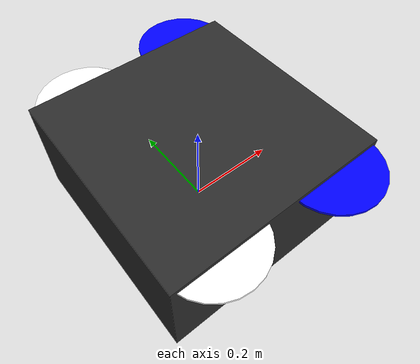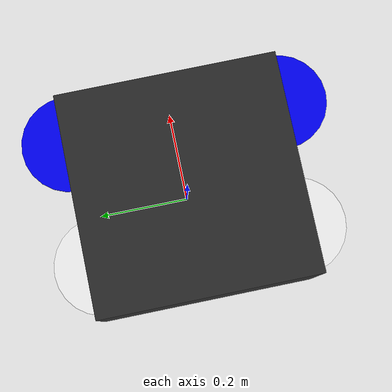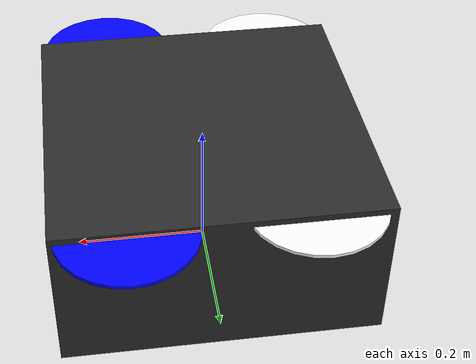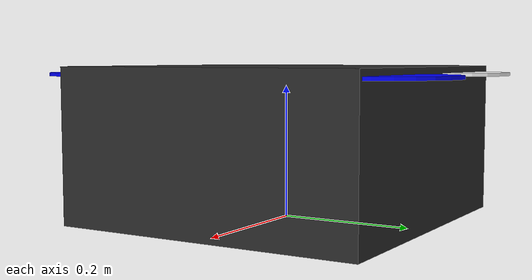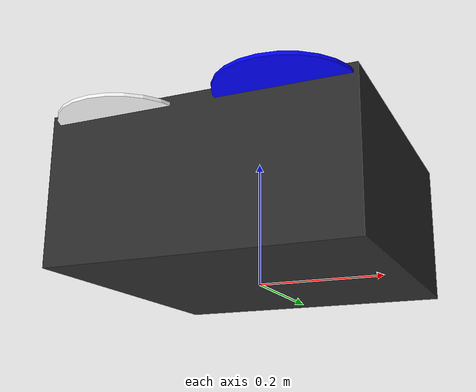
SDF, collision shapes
<?xml version='1.0'?>
<sdf version='1.6'>
  <model name='iris_with_camera'>
    <include>
      <uri>model://iris_with_standoffs</uri>
    </include>

    <include>
      <uri>model://downward_camera</uri>
    </include>

    <plugin
      filename="ignition-gazebo-sensors-system"
      name="ignition::gazebo::systems::Sensors">
    </plugin>

    <joint name="downward_camera_joint" type="fixed">
      <child>downward_camera::link</child>
      <parent>iris_with_standoffs::base_link</parent>
      <axis>
        <xyz>0 0 1</xyz>
        <limit>
          <upper>0</upper>
          <lower>0</lower>
        </limit>
      </axis>
    </joint>
  </model>
</sdf>

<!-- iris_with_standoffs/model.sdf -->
<sdf version='1.5'>
  <model name='iris_with_standoffs'>
    <pose>0 0 0.194923 0 0 0</pose>
    <link name='base_link'>
      <velocity_decay>
        <linear>0.0</linear>
        <angular>0.0</angular>
      </velocity_decay>
      <inertial>
        <pose>0 0 0 0 0 0</pose>
        <mass>1.5</mass>
        <inertia>
          <ixx>0.008</ixx>
          <ixy>0</ixy>
          <ixz>0</ixz>
          <iyy>0.015</iyy>
          <iyz>0</iyz>
          <izz>0.017</izz>
        </inertia>
      </inertial>
      <collision name='base_link_collision'>
        <pose>0 0 -0.08 0 0 0</pose>
        <geometry>
          <box>
            <size>0.47 0.47 0.23</size>
          </box>
        </geometry>
        <surface>
          <contact>
            <ode>
              <max_vel>100.0</max_vel>
              <min_depth>0.001</min_depth>
            </ode>
          </contact>
          <friction>
            <ode>
              <mu>100000.0</mu>
              <mu2>100000.0</mu2>
            </ode>
          </friction>
        </surface>
      </collision>
      <visual name='base_link_visual'>
        <geometry>
          <mesh>
            <uri>model://iris_with_standoffs/meshes/iris.dae</uri>
          </mesh>
        </geometry>
        <material>
          <ambient>.175 .175 .175  1.0</ambient>
          <diffuse>.175 .175 .175  1.0</diffuse>
          <specular>.175 .175 .175 1.000000</specular>
        </material>
      </visual>

      <visual name='front_left_leg_visual'>
        <pose>0.123 0.22 -0.11 0 0 0</pose>
        <geometry>
          <cylinder>
            <radius>0.005</radius>
            <length>0.17</length>
          </cylinder>
        </geometry>
        <material>
          <ambient>0.1 0.1 0.1</ambient>
          <diffuse>0.1 0.1 0.1</diffuse>
          <specular>0.01 0.01 0.01 1.0</specular>
        </material>
      </visual>
      <visual name='front_right_leg_visual'>
        <pose>0.123 -0.22 -0.11 0 0 0</pose>
        <geometry>
          <cylinder>
            <radius>0.005</radius>
            <length>0.17</length>
          </cylinder>
        </geometry>
        <material>
          <ambient>0.1 0.1 0.1</ambient>
          <diffuse>0.1 0.1 0.1</diffuse>
          <specular>0.01 0.01 0.01 1.0</specular>
        </material>
      </visual>
      <visual name='rear_left_leg_visual'>
        <pose>-0.140 0.21 -0.11 0 0 0</pose>
        <geometry>
          <cylinder>
            <radius>0.005</radius>
            <length>0.17</length>
          </cylinder>
        </geometry>
        <material>
          <ambient>0.1 0.1 0.1</ambient>
          <diffuse>0.1 0.1 0.1</diffuse>
          <specular>0.01 0.01 0.01 1.0</specular>
        </material>
      </visual>
      <visual name='rear_right_leg_visual'>
        <pose>-0.140 -0.21 -0.11 0 0 0</pose>
        <geometry>
          <cylinder>
            <radius>0.005</radius>
            <length>0.17</length>
          </cylinder>
        </geometry>
        <material>
          <ambient>0.1 0.1 0.1</ambient>
          <diffuse>0.1 0.1 0.1</diffuse>
          <specular>0.01 0.01 0.01 1.0</specular>
        </material>
      </visual>
    </link>
    <link name='iris/ground_truth/odometry_sensorgt_link'>
      <pose>0 0 0 0 -0 0</pose>
      <inertial>
        <pose>0 0 0 0 -0 0</pose>
        <mass>0.15</mass>
        <inertia>
          <ixx>0.0001</ixx>
          <ixy>0</ixy>
          <ixz>0</ixz>
          <iyy>0.0002</iyy>
          <iyz>0</iyz>
          <izz>0.0002</izz>
        </inertia>
      </inertial>
    </link>
    <joint name='iris/ground_truth/odometry_sensorgt_joint' type='revolute'>
      <child>iris/ground_truth/odometry_sensorgt_link</child>
      <parent>base_link</parent>
      <axis>
        <xyz>0 0 1</xyz>
        <limit>
          <lower>0</lower>
          <upper>0</upper>
          <effort>0</effort>
          <velocity>0</velocity>
        </limit>
        <dynamics>
          <damping>1.0</damping>
        </dynamics>
        <use_parent_model_frame>1</use_parent_model_frame>
      </axis>
      <physics>
        <ode>
          <implicit_spring_damper>1</implicit_spring_damper>
        </ode>
      </physics>
    </joint>
    <link name='imu_link'>
      <inertial>
        <pose>0 0 0 0 0 0</pose>
        <mass>0.15</mass>
        <inertia>
          <ixx>0.00001</ixx>
          <ixy>0</ixy>
          <ixz>0</ixz>
          <iyy>0.00002</iyy>
          <iyz>0</iyz>
          <izz>0.00002</izz>
        </inertia>
      </inertial>
      <sensor name="imu_sensor" type="imu">
        <pose>0 0 0 3.141593 0 0</pose>
        <always_on>1</always_on>
        <update_rate>1000.0</update_rate>
      </sensor>
    </link>
    <joint name='iris/imu_joint' type='revolute'>
      <child>imu_link</child>
      <parent>base_link</parent>
      <axis>
        <xyz>0 0 1</xyz>
        <limit>
          <lower>0</lower>
          <upper>0</upper>
          <effort>0</effort>
          <velocity>0</velocity>
        </limit>
        <dynamics>
          <damping>1.0</damping>
        </dynamics>
        <use_parent_model_frame>1</use_parent_model_frame>
      </axis>
      <physics>
        <ode>
          <implicit_spring_damper>1</implicit_spring_damper>
        </ode>
      </physics>
    </joint>
    <link name='rotor_0'>
      <pose>0.13 -0.22 0.023 0 -0 0</pose>
      <inertial>
        <pose>0 0 0 0 -0 0</pose>
        <mass>0.025</mass>
        <inertia>
          <ixx>9.75e-06</ixx>
          <ixy>0</ixy>
          <ixz>0</ixz>
          <iyy>0.000166704</iyy>
          <iyz>0</iyz>
          <izz>0.000167604</izz>
        </inertia>
      </inertial>
      <collision name='rotor_0_collision'>
        <pose>0 0 0 0 -0 0</pose>
        <geometry>
          <cylinder>
            <length>0.005</length>
            <radius>0.1</radius>
          </cylinder>
        </geometry>
        <surface>
          <contact>
            <ode/>
          </contact>
          <friction>
            <ode/>
          </friction>
        </surface>
      </collision>
      <visual name='rotor_0_visual'>
        <pose>0 0 0 0 -0 0</pose>
        <geometry>
          <mesh>
            <scale>1 1 1</scale>
            <uri>model://iris_with_standoffs/meshes/iris_prop_ccw.dae</uri>
          </mesh>
        </geometry>
        <material>
          <ambient>0 0 1</ambient>
          <diffuse>0 0 1</diffuse>
          <specular>0.1 0.1 0.1 1</specular>
        </material>
      </visual>
      <gravity>1</gravity>
      <velocity_decay/>
      <self_collide>0</self_collide>
    </link>
    <joint name='rotor_0_joint' type='revolute'>
      <child>rotor_0</child>
      <parent>base_link</parent>
      <axis>
        <xyz>0 0 1</xyz>
        <limit>
          <lower>-1e+16</lower>
          <upper>1e+16</upper>
        </limit>
        <dynamics>
          <damping>0.004</damping>
        </dynamics>
        <use_parent_model_frame>1</use_parent_model_frame>
      </axis>
      <physics>
        <ode>
          <implicit_spring_damper>1</implicit_spring_damper>
        </ode>
      </physics>
    </joint>
    <link name='rotor_1'>
      <pose>-0.13 0.2 0.023 0 -0 0</pose>
      <inertial>
        <pose>0 0 0 0 -0 0</pose>
        <mass>0.025</mass>
        <inertia>
          <ixx>9.75e-06</ixx>
          <ixy>0</ixy>
          <ixz>0</ixz>
          <iyy>0.000166704</iyy>
          <iyz>0</iyz>
          <izz>0.000167604</izz>
        </inertia>
      </inertial>
      <collision name='rotor_1_collision'>
        <pose>0 0 0 0 -0 0</pose>
        <geometry>
          <cylinder>
            <length>0.005</length>
            <radius>0.1</radius>
          </cylinder>
        </geometry>
        <surface>
          <contact>
            <ode/>
          </contact>
          <friction>
            <ode/>
          </friction>
        </surface>
      </collision>
      <visual name='rotor_1_visual'>
        <pose>0 0 0 0 -0 0</pose>
        <geometry>
          <mesh>
            <scale>1 1 1</scale>
            <uri>model://iris_with_standoffs/meshes/iris_prop_ccw.dae</uri>
          </mesh>
        </geometry>
        <material>
          <ambient>1 1 1 1</ambient>
          <diffuse>1 1 1 1</diffuse>
          <specular>.1 .1 .1 1</specular>
        </material>
      </visual>
      <gravity>1</gravity>
      <velocity_decay/>
      <self_collide>0</self_collide>
    </link>
    <joint name='rotor_1_joint' type='revolute'>
      <child>rotor_1</child>
      <parent>base_link</parent>
      <axis>
        <xyz>0 0 1</xyz>
        <limit>
          <lower>-1e+16</lower>
          <upper>1e+16</upper>
        </limit>
        <dynamics>
          <damping>0.004</damping>
        </dynamics>
        <use_parent_model_frame>1</use_parent_model_frame>
      </axis>
      <physics>
        <ode>
          <implicit_spring_damper>1</implicit_spring_damper>
        </ode>
      </physics>
    </joint>
    <link name='rotor_2'>
      <pose>0.13 0.22 0.023 0 -0 0</pose>
      <inertial>
        <pose>0 0 0 0 -0 0</pose>
        <mass>0.025</mass>
        <inertia>
          <ixx>9.75e-06</ixx>
          <ixy>0</ixy>
          <ixz>0</ixz>
          <iyy>0.000166704</iyy>
          <iyz>0</iyz>
          <izz>0.000167604</izz>
        </inertia>
      </inertial>
      <collision name='rotor_2_collision'>
        <pose>0 0 0 0 -0 0</pose>
        <geometry>
          <cylinder>
            <length>0.005</length>
            <radius>0.1</radius>
          </cylinder>
        </geometry>
        <surface>
          <contact>
            <ode/>
          </contact>
          <friction>
            <ode/>
          </friction>
        </surface>
      </collision>
      <visual name='rotor_2_visual'>
        <pose>0 0 0 0 -0 0</pose>
        <geometry>
          <mesh>
            <scale>1 1 1</scale>
            <uri>model://iris_with_standoffs/meshes/iris_prop_cw.dae</uri>
          </mesh>
        </geometry>
        <material>
          <ambient>0 0 1</ambient>
          <diffuse>0 0 1</diffuse>
          <specular>0.1 0.1 0.1 1</specular>
        </material>
      </visual>
      <gravity>1</gravity>
      <velocity_decay/>
      <self_collide>0</self_collide>
    </link>
    <joint name='rotor_2_joint' type='revolute'>
      <child>rotor_2</child>
      <parent>base_link</parent>
      <axis>
        <xyz>0 0 1</xyz>
        <limit>
          <lower>-1e+16</lower>
          <upper>1e+16</upper>
        </limit>
        <dynamics>
          <damping>0.004</damping>
        </dynamics>
        <use_parent_model_frame>1</use_parent_model_frame>
      </axis>
      <physics>
        <ode>
          <implicit_spring_damper>1</implicit_spring_damper>
        </ode>
      </physics>
    </joint>
    <link name='rotor_3'>
      <pose>-0.13 -0.2 0.023 0 -0 0</pose>
      <inertial>
        <pose>0 0 0 0 -0 0</pose>
        <mass>0.025</mass>
        <inertia>
          <ixx>9.75e-06</ixx>
          <ixy>0</ixy>
          <ixz>0</ixz>
          <iyy>0.000166704</iyy>
          <iyz>0</iyz>
          <izz>0.000167604</izz>
        </inertia>
      </inertial>
      <collision name='rotor_3_collision'>
        <pose>0 0 0 0 -0 0</pose>
        <geometry>
          <cylinder>
            <length>0.005</length>
            <radius>0.1</radius>
          </cylinder>
        </geometry>
        <surface>
          <contact>
            <ode/>
          </contact>
          <friction>
            <ode/>
          </friction>
        </surface>
      </collision>
      <visual name='rotor_3_visual'>
        <pose>0 0 0 0 -0 0</pose>
        <geometry>
          <mesh>
            <scale>1 1 1</scale>
            <uri>model://iris_with_standoffs/meshes/iris_prop_cw.dae</uri>
          </mesh>
        </geometry>
        <material>
          <ambient>1 1 1 1</ambient>
          <diffuse>1 1 1 1</diffuse>
          <specular>.1 .1 .1 1</specular>
        </material>
      </visual>
      <gravity>1</gravity>
      <velocity_decay/>
      <self_collide>0</self_collide>
    </link>
    <joint name='rotor_3_joint' type='revolute'>
      <child>rotor_3</child>
      <parent>base_link</parent>
      <axis>
        <xyz>0 0 1</xyz>
        <limit>
          <lower>-1e+16</lower>
          <upper>1e+16</upper>
        </limit>
        <dynamics>
          <damping>0.004</damping>
        </dynamics>
        <use_parent_model_frame>1</use_parent_model_frame>
      </axis>
      <physics>
        <ode>
          <implicit_spring_damper>1</implicit_spring_damper>
        </ode>
      </physics>
    </joint>
    <static>0</static>

    <!-- plugins -->
    <plugin filename="libignition-gazebo-joint-state-publisher-system.so"
      name="ignition::gazebo::systems::JointStatePublisher">
    </plugin>
    <plugin filename="libignition-gazebo-lift-drag-system.so"
        name="ignition::gazebo::systems::LiftDrag">
      <a0>0.3</a0>
      <alpha_stall>1.4</alpha_stall>
      <cla>4.2500</cla>
      <cda>0.10</cda>
      <cma>0.00</cma>
      <cla_stall>-0.025</cla_stall>
      <cda_stall>0.0</cda_stall>
      <cma_stall>0.0</cma_stall>
      <area>0.002</area>
      <air_density>1.2041</air_density>
      <cp>0.084 0 0</cp>
      <forward>0 1 0</forward>
      <upward>0 0 1</upward>
      <link_name>rotor_0</link_name>
    </plugin>
    <plugin filename="libignition-gazebo-lift-drag-system.so"
        name="ignition::gazebo::systems::LiftDrag">
      <a0>0.3</a0>
      <alpha_stall>1.4</alpha_stall>
      <cla>4.2500</cla>
      <cda>0.10</cda>
      <cma>0.00</cma>
      <cla_stall>-0.025</cla_stall>
      <cda_stall>0.0</cda_stall>
      <cma_stall>0.0</cma_stall>
      <area>0.002</area>
      <air_density>1.2041</air_density>
      <cp>-0.084 0 0</cp>
      <forward>0 -1 0</forward>
      <upward>0 0 1</upward>
      <link_name>rotor_0</link_name>
    </plugin>

    <plugin filename="libignition-gazebo-lift-drag-system.so"
        name="ignition::gazebo::systems::LiftDrag">
      <a0>0.3</a0>
      <alpha_stall>1.4</alpha_stall>
      <cla>4.2500</cla>
      <cda>0.10</cda>
      <cma>0.00</cma>
      <cla_stall>-0.025</cla_stall>
      <cda_stall>0.0</cda_stall>
      <cma_stall>0.0</cma_stall>
      <area>0.002</area>
      <air_density>1.2041</air_density>
      <cp>0.084 0 0</cp>
      <forward>0 1 0</forward>
      <upward>0 0 1</upward>
      <link_name>rotor_1</link_name>
    </plugin>
    <plugin filename="libignition-gazebo-lift-drag-system.so"
        name="ignition::gazebo::systems::LiftDrag">
      <a0>0.3</a0>
      <alpha_stall>1.4</alpha_stall>
      <cla>4.2500</cla>
      <cda>0.10</cda>
      <cma>0.00</cma>
      <cla_stall>-0.025</cla_stall>
      <cda_stall>0.0</cda_stall>
      <cma_stall>0.0</cma_stall>
      <area>0.002</area>
      <air_density>1.2041</air_density>
      <cp>-0.084 0 0</cp>
      <forward>0 -1 0</forward>
      <upward>0 0 1</upward>
      <link_name>rotor_1</link_name>
    </plugin>

    <plugin filename="libignition-gazebo-lift-drag-system.so"
        name="ignition::gazebo::systems::LiftDrag">
      <a0>0.3</a0>
      <alpha_stall>1.4</alpha_stall>
      <cla>4.2500</cla>
      <cda>0.10</cda>
      <cma>0.00</cma>
      <cla_stall>-0.025</cla_stall>
      <cda_stall>0.0</cda_stall>
      <cma_stall>0.0</cma_stall>
      <area>0.002</area>
      <air_density>1.2041</air_density>
      <cp>0.084 0 0</cp>
      <forward>0 -1 0</forward>
      <upward>0 0 1</upward>
      <link_name>rotor_2</link_name>
    </plugin>
    <plugin filename="libignition-gazebo-lift-drag-system.so"
        name="ignition::gazebo::systems::LiftDrag">
      <a0>0.3</a0>
      <alpha_stall>1.4</alpha_stall>
      <cla>4.2500</cla>
      <cda>0.10</cda>
      <cma>0.00</cma>
      <cla_stall>-0.025</cla_stall>
      <cda_stall>0.0</cda_stall>
      <cma_stall>0.0</cma_stall>
      <area>0.002</area>
      <air_density>1.2041</air_density>
      <cp>-0.084 0 0</cp>
      <forward>0 1 0</forward>
      <upward>0 0 1</upward>
      <link_name>rotor_2</link_name>
    </plugin>

    <plugin filename="libignition-gazebo-lift-drag-system.so"
        name="ignition::gazebo::systems::LiftDrag">
      <a0>0.3</a0>
      <alpha_stall>1.4</alpha_stall>
      <cla>4.2500</cla>
      <cda>0.10</cda>
      <cma>0.00</cma>
      <cla_stall>-0.025</cla_stall>
      <cda_stall>0.0</cda_stall>
      <cma_stall>0.0</cma_stall>
      <area>0.002</area>
      <air_density>1.2041</air_density>
      <cp>0.084 0 0</cp>
      <forward>0 -1 0</forward>
      <upward>0 0 1</upward>
      <link_name>rotor_3</link_name>
    </plugin>
    <plugin filename="libignition-gazebo-lift-drag-system.so"
        name="ignition::gazebo::systems::LiftDrag">
      <a0>0.3</a0>
      <alpha_stall>1.4</alpha_stall>
      <cla>4.2500</cla>
      <cda>0.10</cda>
      <cma>0.00</cma>
      <cla_stall>-0.025</cla_stall>
      <cda_stall>0.0</cda_stall>
      <cma_stall>0.0</cma_stall>
      <area>0.002</area>
      <air_density>1.2041</air_density>
      <cp>-0.084 0 0</cp>
      <forward>0 1 0</forward>
      <upward>0 0 1</upward>
      <link_name>rotor_3</link_name>
    </plugin>

    <plugin filename="libignition-gazebo-apply-joint-force-system.so"
      name="ignition::gazebo::systems::ApplyJointForce">
      <joint_name>rotor_0_joint</joint_name>
    </plugin>
    <plugin filename="libignition-gazebo-apply-joint-force-system.so"
      name="ignition::gazebo::systems::ApplyJointForce">
      <joint_name>rotor_1_joint</joint_name>
    </plugin>
    <plugin filename="libignition-gazebo-apply-joint-force-system.so"
      name="ignition::gazebo::systems::ApplyJointForce">
      <joint_name>rotor_2_joint</joint_name>
    </plugin>
    <plugin filename="libignition-gazebo-apply-joint-force-system.so"
      name="ignition::gazebo::systems::ApplyJointForce">
      <joint_name>rotor_3_joint</joint_name>
    </plugin>

    <plugin name="ArduPilotPlugin" filename="libArduPilotPlugin.so">
      <!-- Port settings -->
      <fdm_addr>127.0.0.1</fdm_addr>
      <fdm_port_in>9002</fdm_port_in>
      <connectionTimeoutMaxCount>5</connectionTimeoutMaxCount>
      <lock_step>1</lock_step>

      <!-- Frame conventions
        Require by ArduPilot: change model and gazebo from XYZ to XY-Z coordinates
      -->
      <modelXYZToAirplaneXForwardZDown>0 0 0 3.141593 0 0</modelXYZToAirplaneXForwardZDown>
      <gazeboXYZToNED>0 0 0 3.141593 0 0</gazeboXYZToNED>

      <!-- Sensors -->
      <imuName>imu_sensor</imuName>

      <!--
          incoming control command [0, 1]
          so offset it by 0 to get [0, 1]
          and divide max target by 1.
          offset = 0
          multiplier = 838 max rpm / 1 = 838
        -->
      <control channel="0">
        <jointName>rotor_0_joint</jointName>
        <useForce>1</useForce>
        <multiplier>838</multiplier>
        <offset>0</offset>
        <servo_min>1100</servo_min>
        <servo_max>1900</servo_max>
        <type>VELOCITY</type>
        <p_gain>0.20</p_gain>
        <i_gain>0</i_gain>
        <d_gain>0</d_gain>
        <i_max>0</i_max>
        <i_min>0</i_min>
        <cmd_max>2.5</cmd_max>
        <cmd_min>-2.5</cmd_min>
        <controlVelocitySlowdownSim>1</controlVelocitySlowdownSim>
      </control>

      <control channel="1">
        <jointName>rotor_1_joint</jointName>
        <useForce>1</useForce>
        <multiplier>838</multiplier>
        <offset>0</offset>
        <servo_min>1100</servo_min>
        <servo_max>1900</servo_max>
        <type>VELOCITY</type>
        <p_gain>0.20</p_gain>
        <i_gain>0</i_gain>
        <d_gain>0</d_gain>
        <i_max>0</i_max>
        <i_min>0</i_min>
        <cmd_max>2.5</cmd_max>
        <cmd_min>-2.5</cmd_min>
        <controlVelocitySlowdownSim>1</controlVelocitySlowdownSim>
      </control>

      <control channel="2">
        <jointName>rotor_2_joint</jointName>
        <useForce>1</useForce>
        <multiplier>-838</multiplier>
        <offset>0</offset>
        <servo_min>1100</servo_min>
        <servo_max>1900</servo_max>
        <type>VELOCITY</type>
        <p_gain>0.20</p_gain>
        <i_gain>0</i_gain>
        <d_gain>0</d_gain>
        <i_max>0</i_max>
        <i_min>0</i_min>
        <cmd_max>2.5</cmd_max>
        <cmd_min>-2.5</cmd_min>
        <controlVelocitySlowdownSim>1</controlVelocitySlowdownSim>
      </control>

      <control channel="3">
        <jointName>rotor_3_joint</jointName>
        <useForce>1</useForce>
        <multiplier>-838</multiplier>
        <offset>0</offset>
        <servo_min>1100</servo_min>
        <servo_max>1900</servo_max>
        <type>VELOCITY</type>
        <p_gain>0.20</p_gain>
        <i_gain>0</i_gain>
        <d_gain>0</d_gain>
        <i_max>0</i_max>
        <i_min>0</i_min>
        <cmd_max>2.5</cmd_max>
        <cmd_min>-2.5</cmd_min>
        <controlVelocitySlowdownSim>1</controlVelocitySlowdownSim>
      </control>
    </plugin>

  </model>
</sdf>

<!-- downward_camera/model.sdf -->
<sdf version='1.6'>
  <model name='downward_camera'>
  <pose>0 0 0.15 0 1.57 0</pose>
    <link name='link'>
      <inertial>
        <mass>0.015</mass>
        <inertia>
          <ixx>4.15e-6</ixx>
          <ixy>0</ixy>
          <ixz>0</ixz>
          <iyy>2.407e-6</iyy>
          <iyz>0</iyz>
          <izz>2.407e-6</izz>
        </inertia>
      </inertial>
      <collision name='collision'>
        <geometry>
          <box>
            <size>0.01 0.01 0.01</size>
          </box>
        </geometry>
        <max_contacts>10</max_contacts>
        <surface>
          <contact>
            <ode/>
          </contact>
          <bounce/>
          <friction>
            <ode/>
          </friction>
        </surface>
      </collision>
      <visual name='visual'>
        <geometry>
          <box>
            <size>0.01 0.01 0.01</size>
          </box>
        </geometry>
      </visual>
      <sensor name='camera' type='camera'>
        <camera name='__default__'>
          <horizontal_fov>1.047</horizontal_fov>
          <image>
            <width>320</width>
            <height>240</height>
          </image>
          <clip>
            <near>0.1</near>
            <far>100</far>
          </clip>
          <lens>
            <type>custom</type>
            <custom_function>
              <c1>1.05</c1>
              <c2>4</c2>
              <f>1</f>
              <fun>tan</fun>
            </custom_function>
            <scale_to_hfov>1</scale_to_hfov>
            <cutoff_angle>3.1415</cutoff_angle>
            <env_texture_size>1080</env_texture_size>
          </lens>
        </camera>
        <always_on>1</always_on>
        <update_rate>30</update_rate>
        <visualize>1</visualize>
          <!-- GStreamer camera plugin (needs a lot of CPU! Consider lowering the
             camera image size) -->
      </sensor>
      <self_collide>0</self_collide>
      <kinematic>0</kinematic>
    </link>
  </model>
</sdf>
